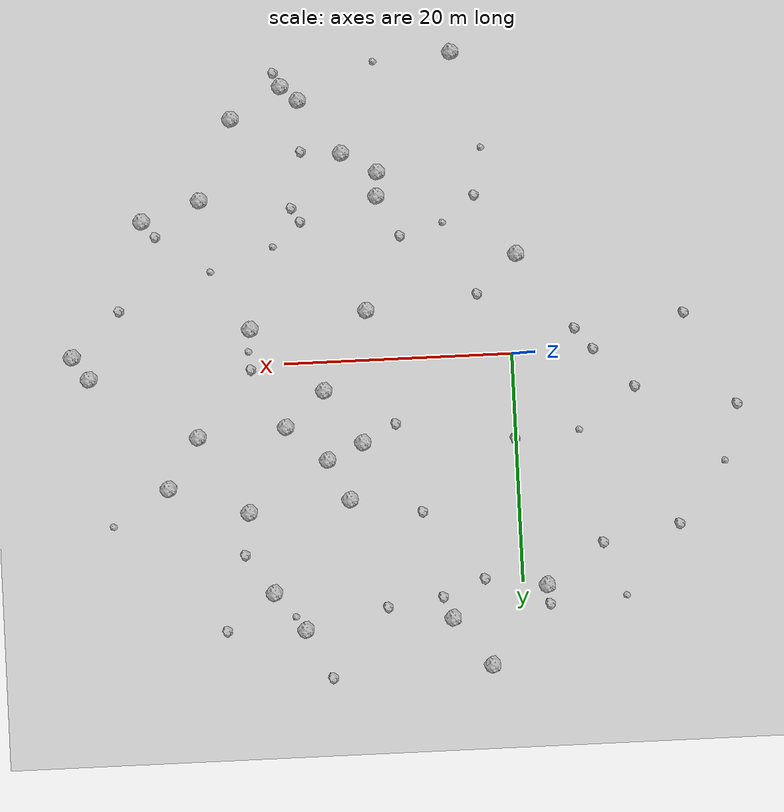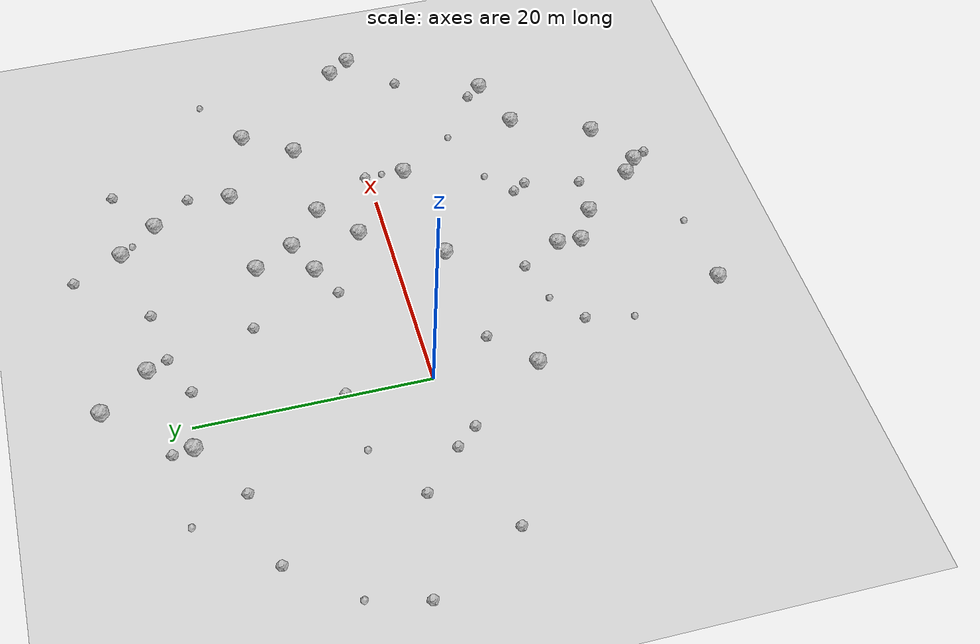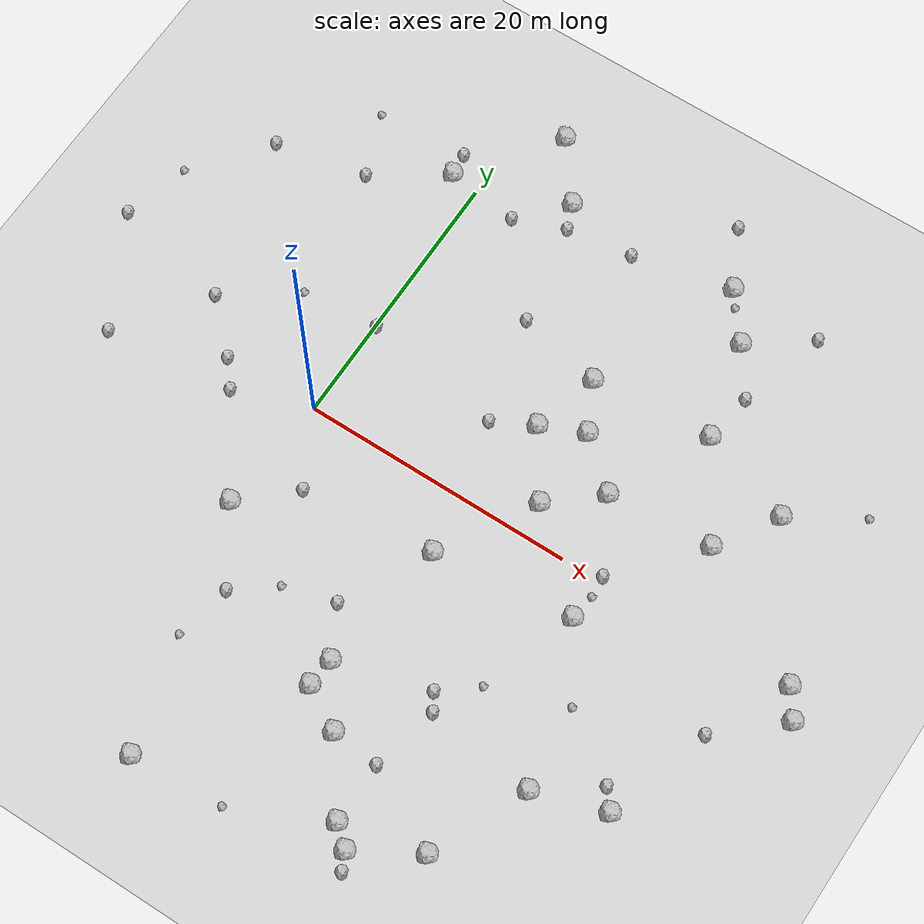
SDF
<sdf version="1.6">
 <world name="default">
  <include><uri>model://custom_ground</uri></include>
  <include><uri>model://sun</uri></include>
  <model name="rock1_0_0">
   <include><uri>model://rock1</uri><pose>11.143650941418674 -16.417504763424855 0.5 0 0 0</pose></include>
  </model>
  <model name="rock1_0_1">
   <include><uri>model://rock1</uri><pose>27.83507927308802 6.034104738478291 0.5 0 0 0</pose></include>
  </model>
  <model name="rock1_0_2">
   <include><uri>model://rock1</uri><pose>16.64858575538426 2.448143112050303 0.5 0 0 0</pose></include>
  </model>
  <model name="rock1_0_3">
   <include><uri>model://rock1</uri><pose>12.656609301338968 -4.392591658817423 0.5 0 0 0</pose></include>
  </model>
  <model name="rock1_0_4">
   <include><uri>model://rock1</uri><pose>11.300185489799702 -14.304817862582501 0.5 0 0 0</pose></include>
  </model>
  <model name="rock1_0_5">
   <include><uri>model://rock1</uri><pose>14.793944905360036 12.050399647413364 0.5 0 0 0</pose></include>
  </model>
  <model name="rock1_0_6">
   <include><uri>model://rock1</uri><pose>37.11355414811421 0.5372550991951073 0.5 0 0 0</pose></include>
  </model>
  <model name="rock1_0_7">
   <include><uri>model://rock1</uri><pose>23.66262860347387 12.791745267514926 0.5 0 0 0</pose></include>
  </model>
  <model name="rock1_0_8">
   <include><uri>model://rock1</uri><pose>13.460754831755004 7.124106758800551 0.5 0 0 0</pose></include>
  </model>
  <model name="rock1_0_9">
   <include><uri>model://rock1</uri><pose>6.293535491964139 22.768422653297705 0.5 0 0 0</pose></include>
  </model>
  <model name="rock1_0_10">
   <include><uri>model://rock1</uri><pose>19.182328347549948 23.23523669202234 0.5 0 0 0</pose></include>
  </model>
  <model name="rock1_0_11">
   <include><uri>model://rock1</uri><pose>16.605818071323412 8.514221518128508 0.5 0 0 0</pose></include>
  </model>
  <model name="rock1_0_12">
   <include><uri>model://rock1</uri><pose>21.787305732238607 19.894200807071755 0.5 0 0 0</pose></include>
  </model>
  <model name="rock1_0_13">
   <include><uri>model://rock1</uri><pose>20.12243894713456 5.476201767984463 0.5 0 0 0</pose></include>
  </model>
  <model name="rock1_0_14">
   <include><uri>model://rock1</uri><pose>17.76164240348148 -22.970244654189948 0.5 0 0 0</pose></include>
  </model>
  <model name="rock1_0_15">
   <include><uri>model://rock1</uri><pose>38.49510815788901 -1.446841855220942 0.5 0 0 0</pose></include>
  </model>
  <model name="rock1_0_16">
   <include><uri>model://rock1</uri><pose>22.857286175380608 -3.2045834499339385 0.5 0 0 0</pose></include>
  </model>
  <model name="rock1_0_17">
   <include><uri>model://rock1</uri><pose>14.208234030777867 -18.193533379243807 0.5 0 0 0</pose></include>
  </model>
  <model name="rock1_0_18">
   <include><uri>model://rock1</uri><pose>4.251891935902616 -26.5975612717064 0.5 0 0 0</pose></include>
  </model>
  <model name="rock1_0_19">
   <include><uri>model://rock1</uri><pose>3.0368480840931475 27.015487492464125 0.5 0 0 0</pose></include>
  </model>
  <model name="rock1_0_20">
   <include><uri>model://rock1</uri><pose>-2.0475511492205065 20.237796704588398 0.5 0 0 0</pose></include>
  </model>
  <model name="rock1_0_21">
   <include><uri>model://rock1</uri><pose>23.704083376823455 -21.590191075085436 0.5 0 0 0</pose></include>
  </model>
  <model name="rock1_0_22">
   <include><uri>model://rock1</uri><pose>19.23832279339296 -24.239999221777886 0.5 0 0 0</pose></include>
  </model>
  <model name="rock1_0_23">
   <include><uri>model://rock1</uri><pose>31.887816754875935 -13.003803814213903 0.5 0 0 0</pose></include>
  </model>
  <model name="rock1_0_24">
   <include><uri>model://rock1</uri><pose>-0.651962226242432 -8.74569180068027 0.5 0 0 0</pose></include>
  </model>
  <model name="rock1_0_25">
   <include><uri>model://rock1</uri><pose>30.609377551162147 10.404826168022097 0.5 0 0 0</pose></include>
  </model>
  <model name="rock1_0_26">
   <include><uri>model://rock1</uri><pose>26.770032368812018 -14.618875563301916 0.5 0 0 0</pose></include>
  </model>
  <model name="rock2_0_0">
   <include><uri>model://rock2</uri><pose>-2.2947553482438963 21.985821324124657 0.3 0 0 0</pose></include>
  </model>
  <model name="rock2_0_1">
   <include><uri>model://rock2</uri><pose>18.76898629384688 -13.588022708538293 0.3 0 0 0</pose></include>
  </model>
  <model name="rock2_0_2">
   <include><uri>model://rock2</uri><pose>3.3191980811748394 19.543325464508392 0.3 0 0 0</pose></include>
  </model>
  <model name="rock2_0_3">
   <include><uri>model://rock2</uri><pose>19.81743505021531 -25.470510414540257 0.3 0 0 0</pose></include>
  </model>
  <model name="rock2_0_4">
   <include><uri>model://rock2</uri><pose>-13.921708448957668 15.500098014237821 0.3 0 0 0</pose></include>
  </model>
  <model name="rock2_0_5">
   <include><uri>model://rock2</uri><pose>18.03320267308581 -12.365036677564703 0.3 0 0 0</pose></include>
  </model>
  <model name="rock2_0_6">
   <include><uri>model://rock2</uri><pose>10.501173092892877 5.649785620226908 0.3 0 0 0</pose></include>
  </model>
  <model name="rock2_0_7">
   <include><uri>model://rock2</uri><pose>0.13542630359271968 7.413126379831795 0.3 0 0 0</pose></include>
  </model>
  <model name="rock2_0_8">
   <include><uri>model://rock2</uri><pose>30.768815503982196 -11.613045301659191 0.3 0 0 0</pose></include>
  </model>
  <model name="rock2_0_9">
   <include><uri>model://rock2</uri><pose>34.2345641798857 -5.262628022735122 0.3 0 0 0</pose></include>
  </model>
  <model name="rock2_0_10">
   <include><uri>model://rock2</uri><pose>-19.402983589531843 5.243869640947111 0.3 0 0 0</pose></include>
  </model>
  <model name="rock2_0_11">
   <include><uri>model://rock2</uri><pose>-5.495230639882072 -1.9913567139663542 0.3 0 0 0</pose></include>
  </model>
  <model name="rock2_0_12">
   <include><uri>model://rock2</uri><pose>9.376237557129915 -10.747480750995237 0.3 0 0 0</pose></include>
  </model>
  <model name="rock2_0_13">
   <include><uri>model://rock2</uri><pose>11.883128939612774 21.65405796843382 0.3 0 0 0</pose></include>
  </model>
  <model name="rock2_0_14">
   <include><uri>model://rock2</uri><pose>-7.1714440280505425 16.835181528024016 0.3 0 0 0</pose></include>
  </model>
  <model name="rock2_0_15">
   <include><uri>model://rock2</uri><pose>2.748294946988704 -14.02161789871209 0.3 0 0 0</pose></include>
  </model>
  <model name="rock2_0_16">
   <include><uri>model://rock2</uri><pose>8.49452184777871 13.44386578085927 0.3 0 0 0</pose></include>
  </model>
  <model name="rock2_0_17">
   <include><uri>model://rock2</uri><pose>16.97162174002488 27.60588910034142 0.3 0 0 0</pose></include>
  </model>
  <model name="rock2_0_18">
   <include><uri>model://rock2</uri><pose>-7.033484361243602 -0.1203224903386122 0.3 0 0 0</pose></include>
  </model>
  <model name="rock2_0_19">
   <include><uri>model://rock2</uri><pose>24.16561977555412 16.544465769305823 0.3 0 0 0</pose></include>
  </model>
  <model name="rock2_0_20">
   <include><uri>model://rock2</uri><pose>17.709486646549564 -18.481750109984397 0.3 0 0 0</pose></include>
  </model>
  <model name="rock2_0_21">
   <include><uri>model://rock2</uri><pose>-10.526748756899053 3.318125464738536 0.3 0 0 0</pose></include>
  </model>
  <model name="rock2_0_22">
   <include><uri>model://rock2</uri><pose>7.020591042518255 20.98049445318061 0.3 0 0 0</pose></include>
  </model>
  <model name="rock2_0_23">
   <include><uri>model://rock2</uri><pose>22.927721667362277 0.35884268539288655 0.3 0 0 0</pose></include>
  </model>
  <model name="rock2_0_24">
   <include><uri>model://rock2</uri><pose>-15.07398089123913 -2.928789202647735 0.3 0 0 0</pose></include>
  </model>
  <model name="rock2_0_25">
   <include><uri>model://rock2</uri><pose>2.8736734525573517 -5.367638294519203 0.3 0 0 0</pose></include>
  </model>
  <model name="rock2_0_26">
   <include><uri>model://rock2</uri><pose>26.032413909453048 23.12047414287153 0.3 0 0 0</pose></include>
  </model>
  <model name="rock3_0_0">
   <include><uri>model://rock3</uri><pose>20.505110261606404 -10.341852483176723 0.2 0 0 0</pose></include>
  </model>
  <model name="rock3_0_1">
   <include><uri>model://rock3</uri><pose>23.070958540862 -1.2662872646168815 0.2 0 0 0</pose></include>
  </model>
  <model name="rock3_0_2">
   <include><uri>model://rock3</uri><pose>35.559268838565785 13.52113279759211 0.2 0 0 0</pose></include>
  </model>
  <model name="rock3_0_3">
   <include><uri>model://rock3</uri><pose>1.9469146130718187 -18.226252528520973 0.2 0 0 0</pose></include>
  </model>
  <model name="rock3_0_4">
   <include><uri>model://rock3</uri><pose>-5.534208475254253 6.856362089168606 0.2 0 0 0</pose></include>
  </model>
  <model name="rock3_0_5">
   <include><uri>model://rock3</uri><pose>11.020026263965232 -26.14810078771512 0.2 0 0 0</pose></include>
  </model>
  <model name="rock3_0_6">
   <include><uri>model://rock3</uri><pose>-9.031924225940928 21.526733154375115 0.2 0 0 0</pose></include>
  </model>
  <model name="rock3_0_7">
   <include><uri>model://rock3</uri><pose>-18.15227509209616 10.133185981570826 0.2 0 0 0</pose></include>
  </model>
  <model name="rock3_0_8">
   <include><uri>model://rock3</uri><pose>26.073331325868786 -8.398400956384336 0.2 0 0 0</pose></include>
  </model>
  <model name="rock3_0_9">
   <include><uri>model://rock3</uri><pose>5.586248252618269 -11.806685652556382 0.2 0 0 0</pose></include>
  </model>
  <model name="rock3_0_10">
   <include><uri>model://rock3</uri><pose>19.975091214850778 22.09318521446768 0.2 0 0 0</pose></include>
  </model>
 </world>
</sdf>
